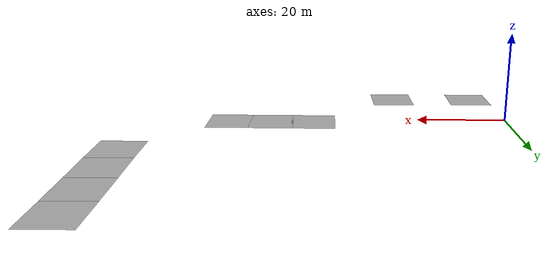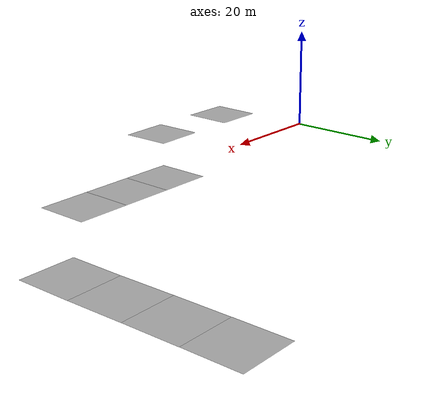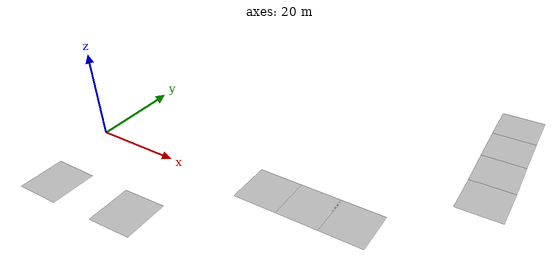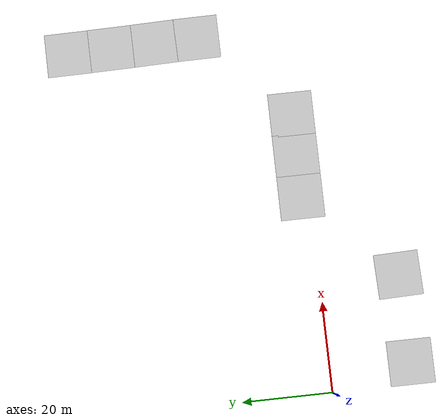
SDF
<sdf version="1.4">
 <world name="vilma_task_1">
  <model name="road_2">
   <static>1</static>
   <pose>4.49281 -18 0 0 -0 0</pose>
   <link name="link">
    <visual name="visual">
     <pose>0 0 0.005 0 -0 0</pose>
     <geometry><mesh><uri>model://road/road.dae</uri></mesh></geometry>
    </visual>
    <velocity_decay><linear>0</linear><angular>0</angular></velocity_decay>
   </link>
  </model>
  <model name="road_3">
   <static>1</static>
   <pose>24.2833 -17.0932 0 0 0 -1.54199</pose>
   <link name="link">
    <visual name="visual">
     <pose>0 0 0.005 0 -0 0</pose>
     <geometry><mesh><uri>model://road/road.dae</uri></mesh></geometry>
    </visual>
    <velocity_decay><linear>0</linear><angular>0</angular></velocity_decay>
   </link>
  </model>
  <model name="road_4">
   <static>1</static>
   <pose>43.5554 2 0 0 -0 0</pose>
   <link name="link">
    <visual name="visual">
     <pose>0 0 0.005 0 -0 0</pose>
     <geometry><mesh><uri>model://road/road.dae</uri></mesh></geometry>
    </visual>
    <velocity_decay><linear>0</linear><angular>0</angular></velocity_decay>
   </link>
  </model>
  <model name="road_5">
   <static>1</static>
   <pose>53 2 0 0 -0 0</pose>
   <link name="link">
    <visual name="visual">
     <pose>0 0 0.005 0 -0 0</pose>
     <geometry><mesh><uri>model://road/road.dae</uri></mesh></geometry>
    </visual>
    <velocity_decay><linear>0</linear><angular>0</angular></velocity_decay>
   </link>
  </model>
  <model name="road_6">
   <static>1</static>
   <pose>62.586 2 0 0 -0 0</pose>
   <link name="link">
    <visual name="visual">
     <pose>0 0 0.005 0 -0 0</pose>
     <geometry><mesh><uri>model://road/road.dae</uri></mesh></geometry>
    </visual>
    <velocity_decay><linear>0</linear><angular>0</angular></velocity_decay>
   </link>
  </model>
  <model name="road_7">
   <static>1</static>
   <pose>82.6769 22.0067 0 0 0 -1.56087</pose>
   <link name="link">
    <visual name="visual">
     <pose>0 0 0.005 0 -0 0</pose>
     <geometry><mesh><uri>model://road/road.dae</uri></mesh></geometry>
    </visual>
    <velocity_decay><linear>0</linear><angular>0</angular></velocity_decay>
   </link>
  </model>
  <model name="road_8">
   <static>1</static>
   <pose>82.4757 31.8533 0 0 0 -1.54422</pose>
   <link name="link">
    <visual name="visual">
     <pose>0 0 0.005 0 -0 0</pose>
     <geometry><mesh><uri>model://road/road.dae</uri></mesh></geometry>
    </visual>
    <velocity_decay><linear>0</linear><angular>0</angular></velocity_decay>
   </link>
  </model>
  <model name="road_9">
   <static>1</static>
   <pose>82.2426 41.7031 0 0 0 -1.55212</pose>
   <link name="link">
    <visual name="visual">
     <pose>0 0 0.005 0 -0 0</pose>
     <geometry><mesh><uri>model://road/road.dae</uri></mesh></geometry>
    </visual>
    <velocity_decay><linear>0</linear><angular>0</angular></velocity_decay>
   </link>
  </model>
  <model name="road_10">
   <static>1</static>
   <pose>82.2424 50.6695 0 0 -0 1.58404</pose>
   <link name="link">
    <visual name="visual">
     <pose>0 0 0.005 0 -0 0</pose>
     <geometry><mesh><uri>model://road/road.dae</uri></mesh></geometry>
    </visual>
    <velocity_decay><linear>0</linear><angular>0</angular></velocity_decay>
   </link>
  </model>
 </world>
</sdf>
